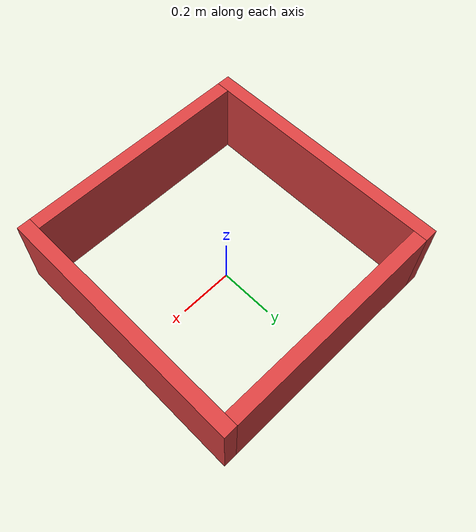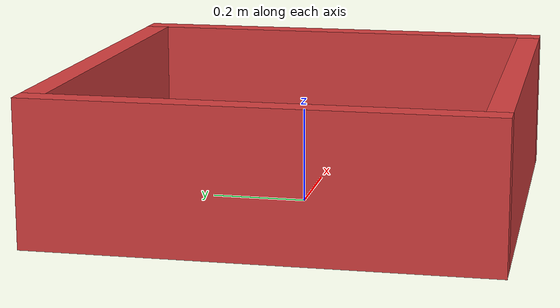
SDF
<?xml version="1.0"?>
<!-- Four static walls around the robot for tools/fsm_demo.py, 0.84 m inside: every side is inside the
     0.70 m clearance the avoidance needs, so the episode runs past its 10 s limit (ALERT, STUCK). -->
<sdf version="1.9">
  <model name="pen">
    <static>true</static>
    <link name="link">
      <collision name="n"><pose>0.445 0 0.15 0 0 0</pose><geometry><box><size>0.05 0.94 0.3</size></box></geometry></collision>
      <collision name="s"><pose>-0.445 0 0.15 0 0 0</pose><geometry><box><size>0.05 0.94 0.3</size></box></geometry></collision>
      <collision name="e"><pose>0 0.445 0.15 0 0 0</pose><geometry><box><size>0.84 0.05 0.3</size></box></geometry></collision>
      <collision name="w"><pose>0 -0.445 0.15 0 0 0</pose><geometry><box><size>0.84 0.05 0.3</size></box></geometry></collision>
      <visual name="vn"><pose>0.445 0 0.15 0 0 0</pose><geometry><box><size>0.05 0.94 0.3</size></box></geometry>
        <material><ambient>0.7 0.2 0.2 1</ambient><diffuse>0.85 0.25 0.25 1</diffuse></material></visual>
      <visual name="vs"><pose>-0.445 0 0.15 0 0 0</pose><geometry><box><size>0.05 0.94 0.3</size></box></geometry>
        <material><ambient>0.7 0.2 0.2 1</ambient><diffuse>0.85 0.25 0.25 1</diffuse></material></visual>
      <visual name="ve"><pose>0 0.445 0.15 0 0 0</pose><geometry><box><size>0.84 0.05 0.3</size></box></geometry>
        <material><ambient>0.7 0.2 0.2 1</ambient><diffuse>0.85 0.25 0.25 1</diffuse></material></visual>
      <visual name="vw"><pose>0 -0.445 0.15 0 0 0</pose><geometry><box><size>0.84 0.05 0.3</size></box></geometry>
        <material><ambient>0.7 0.2 0.2 1</ambient><diffuse>0.85 0.25 0.25 1</diffuse></material></visual>
    </link>
  </model>
</sdf>
